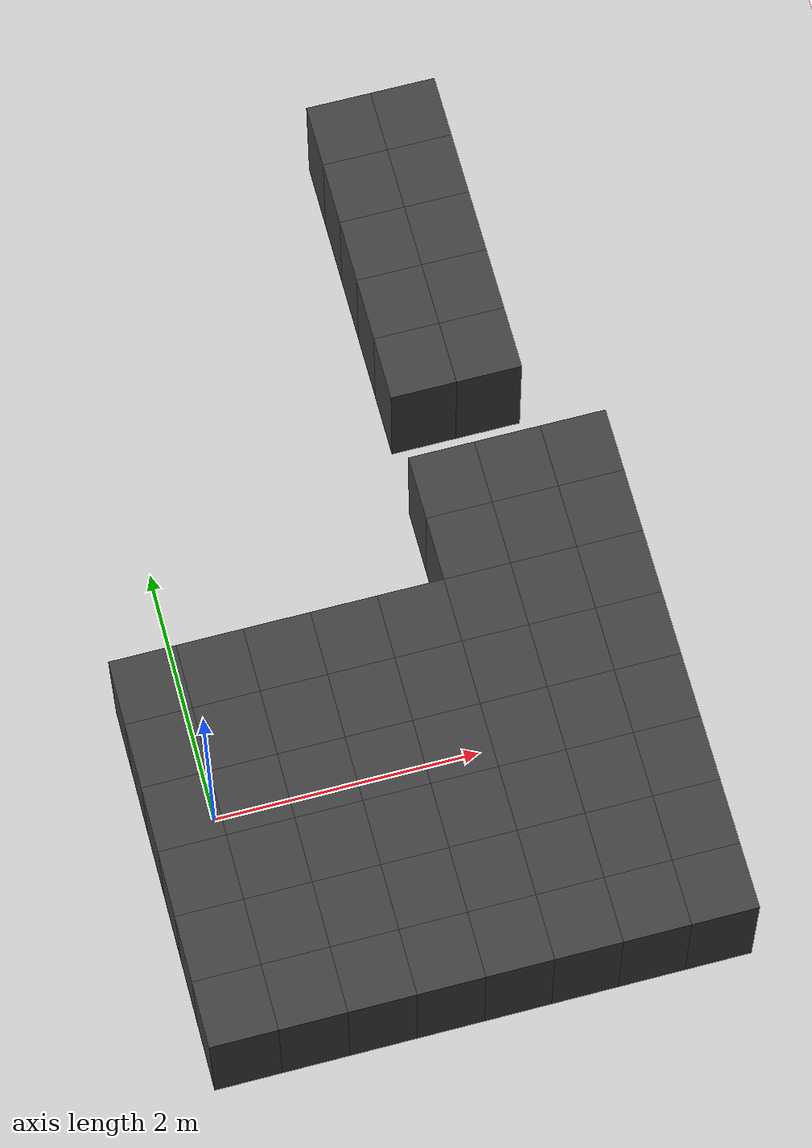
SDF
<sdf version="1.7">
 <world name="map_11515">
  <model name="ground_plane">
   <static>true</static>
   <link name="link">
    <collision name="collision">
     <geometry><plane><normal>0 0 1</normal><size>200 200</size></plane></geometry>
    </collision>
    <visual name="visual">
     <geometry><plane><normal>0 0 1</normal><size>200 200</size></plane></geometry>
     <material><ambient>0.8 0.8 0.8 1</ambient><diffuse>0.8 0.8 0.8 1</diffuse></material>
    </visual>
   </link>
  </model>
  <model name="maze_environment">
   <static>true</static>
   <link name="wall_662">
    <pose>2.250 4.750 0.500 0 0 0</pose>
    <collision name="col"><geometry><box><size>0.5 0.5 1.0</size></box></geometry></collision>
    <visual name="vis">
     <geometry><box><size>0.5 0.5 1.0</size></box></geometry>
     <material><ambient>0.15 0.15 0.15 1</ambient><diffuse>0.25 0.25 0.25 1</diffuse></material>
    </visual>
   </link>
   <link name="wall_663">
    <pose>2.750 4.750 0.500 0 0 0</pose>
    <collision name="col"><geometry><box><size>0.5 0.5 1.0</size></box></geometry></collision>
    <visual name="vis">
     <geometry><box><size>0.5 0.5 1.0</size></box></geometry>
     <material><ambient>0.15 0.15 0.15 1</ambient><diffuse>0.25 0.25 0.25 1</diffuse></material>
    </visual>
   </link>
   <link name="wall_702">
    <pose>2.250 4.250 0.500 0 0 0</pose>
    <collision name="col"><geometry><box><size>0.5 0.5 1.0</size></box></geometry></collision>
    <visual name="vis">
     <geometry><box><size>0.5 0.5 1.0</size></box></geometry>
     <material><ambient>0.15 0.15 0.15 1</ambient><diffuse>0.25 0.25 0.25 1</diffuse></material>
    </visual>
   </link>
   <link name="wall_703">
    <pose>2.750 4.250 0.500 0 0 0</pose>
    <collision name="col"><geometry><box><size>0.5 0.5 1.0</size></box></geometry></collision>
    <visual name="vis">
     <geometry><box><size>0.5 0.5 1.0</size></box></geometry>
     <material><ambient>0.15 0.15 0.15 1</ambient><diffuse>0.25 0.25 0.25 1</diffuse></material>
    </visual>
   </link>
   <link name="wall_744">
    <pose>2.250 3.750 0.500 0 0 0</pose>
    <collision name="col"><geometry><box><size>0.5 0.5 1.0</size></box></geometry></collision>
    <visual name="vis">
     <geometry><box><size>0.5 0.5 1.0</size></box></geometry>
     <material><ambient>0.15 0.15 0.15 1</ambient><diffuse>0.25 0.25 0.25 1</diffuse></material>
    </visual>
   </link>
   <link name="wall_745">
    <pose>2.750 3.750 0.500 0 0 0</pose>
    <collision name="col"><geometry><box><size>0.5 0.5 1.0</size></box></geometry></collision>
    <visual name="vis">
     <geometry><box><size>0.5 0.5 1.0</size></box></geometry>
     <material><ambient>0.15 0.15 0.15 1</ambient><diffuse>0.25 0.25 0.25 1</diffuse></material>
    </visual>
   </link>
   <link name="wall_786">
    <pose>2.250 3.250 0.500 0 0 0</pose>
    <collision name="col"><geometry><box><size>0.5 0.5 1.0</size></box></geometry></collision>
    <visual name="vis">
     <geometry><box><size>0.5 0.5 1.0</size></box></geometry>
     <material><ambient>0.15 0.15 0.15 1</ambient><diffuse>0.25 0.25 0.25 1</diffuse></material>
    </visual>
   </link>
   <link name="wall_787">
    <pose>2.750 3.250 0.500 0 0 0</pose>
    <collision name="col"><geometry><box><size>0.5 0.5 1.0</size></box></geometry></collision>
    <visual name="vis">
     <geometry><box><size>0.5 0.5 1.0</size></box></geometry>
     <material><ambient>0.15 0.15 0.15 1</ambient><diffuse>0.25 0.25 0.25 1</diffuse></material>
    </visual>
   </link>
   <link name="wall_822">
    <pose>2.250 2.750 0.500 0 0 0</pose>
    <collision name="col"><geometry><box><size>0.5 0.5 1.0</size></box></geometry></collision>
    <visual name="vis">
     <geometry><box><size>0.5 0.5 1.0</size></box></geometry>
     <material><ambient>0.15 0.15 0.15 1</ambient><diffuse>0.25 0.25 0.25 1</diffuse></material>
    </visual>
   </link>
   <link name="wall_823">
    <pose>2.750 2.750 0.500 0 0 0</pose>
    <collision name="col"><geometry><box><size>0.5 0.5 1.0</size></box></geometry></collision>
    <visual name="vis">
     <geometry><box><size>0.5 0.5 1.0</size></box></geometry>
     <material><ambient>0.15 0.15 0.15 1</ambient><diffuse>0.25 0.25 0.25 1</diffuse></material>
    </visual>
   </link>
   <link name="wall_884">
    <pose>2.250 1.750 0.500 0 0 0</pose>
    <collision name="col"><geometry><box><size>0.5 0.5 1.0</size></box></geometry></collision>
    <visual name="vis">
     <geometry><box><size>0.5 0.5 1.0</size></box></geometry>
     <material><ambient>0.15 0.15 0.15 1</ambient><diffuse>0.25 0.25 0.25 1</diffuse></material>
    </visual>
   </link>
   <link name="wall_885">
    <pose>2.750 1.750 0.500 0 0 0</pose>
    <collision name="col"><geometry><box><size>0.5 0.5 1.0</size></box></geometry></collision>
    <visual name="vis">
     <geometry><box><size>0.5 0.5 1.0</size></box></geometry>
     <material><ambient>0.15 0.15 0.15 1</ambient><diffuse>0.25 0.25 0.25 1</diffuse></material>
    </visual>
   </link>
   <link name="wall_886">
    <pose>3.250 1.750 0.500 0 0 0</pose>
    <collision name="col"><geometry><box><size>0.5 0.5 1.0</size></box></geometry></collision>
    <visual name="vis">
     <geometry><box><size>0.5 0.5 1.0</size></box></geometry>
     <material><ambient>0.15 0.15 0.15 1</ambient><diffuse>0.25 0.25 0.25 1</diffuse></material>
    </visual>
   </link>
   <link name="wall_920">
    <pose>2.250 1.250 0.500 0 0 0</pose>
    <collision name="col"><geometry><box><size>0.5 0.5 1.0</size></box></geometry></collision>
    <visual name="vis">
     <geometry><box><size>0.5 0.5 1.0</size></box></geometry>
     <material><ambient>0.15 0.15 0.15 1</ambient><diffuse>0.25 0.25 0.25 1</diffuse></material>
    </visual>
   </link>
   <link name="wall_921">
    <pose>2.750 1.250 0.500 0 0 0</pose>
    <collision name="col"><geometry><box><size>0.5 0.5 1.0</size></box></geometry></collision>
    <visual name="vis">
     <geometry><box><size>0.5 0.5 1.0</size></box></geometry>
     <material><ambient>0.15 0.15 0.15 1</ambient><diffuse>0.25 0.25 0.25 1</diffuse></material>
    </visual>
   </link>
   <link name="wall_922">
    <pose>3.250 1.250 0.500 0 0 0</pose>
    <collision name="col"><geometry><box><size>0.5 0.5 1.0</size></box></geometry></collision>
    <visual name="vis">
     <geometry><box><size>0.5 0.5 1.0</size></box></geometry>
     <material><ambient>0.15 0.15 0.15 1</ambient><diffuse>0.25 0.25 0.25 1</diffuse></material>
    </visual>
   </link>
   <link name="wall_956">
    <pose>-0.250 0.750 0.500 0 0 0</pose>
    <collision name="col"><geometry><box><size>0.5 0.5 1.0</size></box></geometry></collision>
    <visual name="vis">
     <geometry><box><size>0.5 0.5 1.0</size></box></geometry>
     <material><ambient>0.15 0.15 0.15 1</ambient><diffuse>0.25 0.25 0.25 1</diffuse></material>
    </visual>
   </link>
   <link name="wall_957">
    <pose>0.250 0.750 0.500 0 0 0</pose>
    <collision name="col"><geometry><box><size>0.5 0.5 1.0</size></box></geometry></collision>
    <visual name="vis">
     <geometry><box><size>0.5 0.5 1.0</size></box></geometry>
     <material><ambient>0.15 0.15 0.15 1</ambient><diffuse>0.25 0.25 0.25 1</diffuse></material>
    </visual>
   </link>
   <link name="wall_958">
    <pose>0.750 0.750 0.500 0 0 0</pose>
    <collision name="col"><geometry><box><size>0.5 0.5 1.0</size></box></geometry></collision>
    <visual name="vis">
     <geometry><box><size>0.5 0.5 1.0</size></box></geometry>
     <material><ambient>0.15 0.15 0.15 1</ambient><diffuse>0.25 0.25 0.25 1</diffuse></material>
    </visual>
   </link>
   <link name="wall_959">
    <pose>1.250 0.750 0.500 0 0 0</pose>
    <collision name="col"><geometry><box><size>0.5 0.5 1.0</size></box></geometry></collision>
    <visual name="vis">
     <geometry><box><size>0.5 0.5 1.0</size></box></geometry>
     <material><ambient>0.15 0.15 0.15 1</ambient><diffuse>0.25 0.25 0.25 1</diffuse></material>
    </visual>
   </link>
   <link name="wall_960">
    <pose>1.750 0.750 0.500 0 0 0</pose>
    <collision name="col"><geometry><box><size>0.5 0.5 1.0</size></box></geometry></collision>
    <visual name="vis">
     <geometry><box><size>0.5 0.5 1.0</size></box></geometry>
     <material><ambient>0.15 0.15 0.15 1</ambient><diffuse>0.25 0.25 0.25 1</diffuse></material>
    </visual>
   </link>
   <link name="wall_961">
    <pose>2.250 0.750 0.500 0 0 0</pose>
    <collision name="col"><geometry><box><size>0.5 0.5 1.0</size></box></geometry></collision>
    <visual name="vis">
     <geometry><box><size>0.5 0.5 1.0</size></box></geometry>
     <material><ambient>0.15 0.15 0.15 1</ambient><diffuse>0.25 0.25 0.25 1</diffuse></material>
    </visual>
   </link>
   <link name="wall_962">
    <pose>2.750 0.750 0.500 0 0 0</pose>
    <collision name="col"><geometry><box><size>0.5 0.5 1.0</size></box></geometry></collision>
    <visual name="vis">
     <geometry><box><size>0.5 0.5 1.0</size></box></geometry>
     <material><ambient>0.15 0.15 0.15 1</ambient><diffuse>0.25 0.25 0.25 1</diffuse></material>
    </visual>
   </link>
   <link name="wall_963">
    <pose>3.250 0.750 0.500 0 0 0</pose>
    <collision name="col"><geometry><box><size>0.5 0.5 1.0</size></box></geometry></collision>
    <visual name="vis">
     <geometry><box><size>0.5 0.5 1.0</size></box></geometry>
     <material><ambient>0.15 0.15 0.15 1</ambient><diffuse>0.25 0.25 0.25 1</diffuse></material>
    </visual>
   </link>
   <link name="wall_1005">
    <pose>-0.250 0.250 0.500 0 0 0</pose>
    <collision name="col"><geometry><box><size>0.5 0.5 1.0</size></box></geometry></collision>
    <visual name="vis">
     <geometry><box><size>0.5 0.5 1.0</size></box></geometry>
     <material><ambient>0.15 0.15 0.15 1</ambient><diffuse>0.25 0.25 0.25 1</diffuse></material>
    </visual>
   </link>
   <link name="wall_1006">
    <pose>0.250 0.250 0.500 0 0 0</pose>
    <collision name="col"><geometry><box><size>0.5 0.5 1.0</size></box></geometry></collision>
    <visual name="vis">
     <geometry><box><size>0.5 0.5 1.0</size></box></geometry>
     <material><ambient>0.15 0.15 0.15 1</ambient><diffuse>0.25 0.25 0.25 1</diffuse></material>
    </visual>
   </link>
   <link name="wall_1007">
    <pose>0.750 0.250 0.500 0 0 0</pose>
    <collision name="col"><geometry><box><size>0.5 0.5 1.0</size></box></geometry></collision>
    <visual name="vis">
     <geometry><box><size>0.5 0.5 1.0</size></box></geometry>
     <material><ambient>0.15 0.15 0.15 1</ambient><diffuse>0.25 0.25 0.25 1</diffuse></material>
    </visual>
   </link>
   <link name="wall_1008">
    <pose>1.250 0.250 0.500 0 0 0</pose>
    <collision name="col"><geometry><box><size>0.5 0.5 1.0</size></box></geometry></collision>
    <visual name="vis">
     <geometry><box><size>0.5 0.5 1.0</size></box></geometry>
     <material><ambient>0.15 0.15 0.15 1</ambient><diffuse>0.25 0.25 0.25 1</diffuse></material>
    </visual>
   </link>
   <link name="wall_1009">
    <pose>1.750 0.250 0.500 0 0 0</pose>
    <collision name="col"><geometry><box><size>0.5 0.5 1.0</size></box></geometry></collision>
    <visual name="vis">
     <geometry><box><size>0.5 0.5 1.0</size></box></geometry>
     <material><ambient>0.15 0.15 0.15 1</ambient><diffuse>0.25 0.25 0.25 1</diffuse></material>
    </visual>
   </link>
   <link name="wall_1010">
    <pose>2.250 0.250 0.500 0 0 0</pose>
    <collision name="col"><geometry><box><size>0.5 0.5 1.0</size></box></geometry></collision>
    <visual name="vis">
     <geometry><box><size>0.5 0.5 1.0</size></box></geometry>
     <material><ambient>0.15 0.15 0.15 1</ambient><diffuse>0.25 0.25 0.25 1</diffuse></material>
    </visual>
   </link>
   <link name="wall_1011">
    <pose>2.750 0.250 0.500 0 0 0</pose>
    <collision name="col"><geometry><box><size>0.5 0.5 1.0</size></box></geometry></collision>
    <visual name="vis">
     <geometry><box><size>0.5 0.5 1.0</size></box></geometry>
     <material><ambient>0.15 0.15 0.15 1</ambient><diffuse>0.25 0.25 0.25 1</diffuse></material>
    </visual>
   </link>
   <link name="wall_1012">
    <pose>3.250 0.250 0.500 0 0 0</pose>
    <collision name="col"><geometry><box><size>0.5 0.5 1.0</size></box></geometry></collision>
    <visual name="vis">
     <geometry><box><size>0.5 0.5 1.0</size></box></geometry>
     <material><ambient>0.15 0.15 0.15 1</ambient><diffuse>0.25 0.25 0.25 1</diffuse></material>
    </visual>
   </link>
   <link name="wall_1054">
    <pose>-0.250 -0.250 0.500 0 0 0</pose>
    <collision name="col"><geometry><box><size>0.5 0.5 1.0</size></box></geometry></collision>
    <visual name="vis">
     <geometry><box><size>0.5 0.5 1.0</size></box></geometry>
     <material><ambient>0.15 0.15 0.15 1</ambient><diffuse>0.25 0.25 0.25 1</diffuse></material>
    </visual>
   </link>
   <link name="wall_1055">
    <pose>0.250 -0.250 0.500 0 0 0</pose>
    <collision name="col"><geometry><box><size>0.5 0.5 1.0</size></box></geometry></collision>
    <visual name="vis">
     <geometry><box><size>0.5 0.5 1.0</size></box></geometry>
     <material><ambient>0.15 0.15 0.15 1</ambient><diffuse>0.25 0.25 0.25 1</diffuse></material>
    </visual>
   </link>
   <link name="wall_1056">
    <pose>0.750 -0.250 0.500 0 0 0</pose>
    <collision name="col"><geometry><box><size>0.5 0.5 1.0</size></box></geometry></collision>
    <visual name="vis">
     <geometry><box><size>0.5 0.5 1.0</size></box></geometry>
     <material><ambient>0.15 0.15 0.15 1</ambient><diffuse>0.25 0.25 0.25 1</diffuse></material>
    </visual>
   </link>
   <link name="wall_1057">
    <pose>1.250 -0.250 0.500 0 0 0</pose>
    <collision name="col"><geometry><box><size>0.5 0.5 1.0</size></box></geometry></collision>
    <visual name="vis">
     <geometry><box><size>0.5 0.5 1.0</size></box></geometry>
     <material><ambient>0.15 0.15 0.15 1</ambient><diffuse>0.25 0.25 0.25 1</diffuse></material>
    </visual>
   </link>
   <link name="wall_1058">
    <pose>1.750 -0.250 0.500 0 0 0</pose>
    <collision name="col"><geometry><box><size>0.5 0.5 1.0</size></box></geometry></collision>
    <visual name="vis">
     <geometry><box><size>0.5 0.5 1.0</size></box></geometry>
     <material><ambient>0.15 0.15 0.15 1</ambient><diffuse>0.25 0.25 0.25 1</diffuse></material>
    </visual>
   </link>
   <link name="wall_1059">
    <pose>2.250 -0.250 0.500 0 0 0</pose>
    <collision name="col"><geometry><box><size>0.5 0.5 1.0</size></box></geometry></collision>
    <visual name="vis">
     <geometry><box><size>0.5 0.5 1.0</size></box></geometry>
     <material><ambient>0.15 0.15 0.15 1</ambient><diffuse>0.25 0.25 0.25 1</diffuse></material>
    </visual>
   </link>
   <link name="wall_1060">
    <pose>2.750 -0.250 0.500 0 0 0</pose>
    <collision name="col"><geometry><box><size>0.5 0.5 1.0</size></box></geometry></collision>
    <visual name="vis">
     <geometry><box><size>0.5 0.5 1.0</size></box></geometry>
     <material><ambient>0.15 0.15 0.15 1</ambient><diffuse>0.25 0.25 0.25 1</diffuse></material>
    </visual>
   </link>
   <link name="wall_1061">
    <pose>3.250 -0.250 0.500 0 0 0</pose>
    <collision name="col"><geometry><box><size>0.5 0.5 1.0</size></box></geometry></collision>
    <visual name="vis">
     <geometry><box><size>0.5 0.5 1.0</size></box></geometry>
     <material><ambient>0.15 0.15 0.15 1</ambient><diffuse>0.25 0.25 0.25 1</diffuse></material>
    </visual>
   </link>
   <link name="wall_1103">
    <pose>-0.250 -0.750 0.500 0 0 0</pose>
    <collision name="col"><geometry><box><size>0.5 0.5 1.0</size></box></geometry></collision>
    <visual name="vis">
     <geometry><box><size>0.5 0.5 1.0</size></box></geometry>
     <material><ambient>0.15 0.15 0.15 1</ambient><diffuse>0.25 0.25 0.25 1</diffuse></material>
    </visual>
   </link>
   <link name="wall_1104">
    <pose>0.250 -0.750 0.500 0 0 0</pose>
    <collision name="col"><geometry><box><size>0.5 0.5 1.0</size></box></geometry></collision>
    <visual name="vis">
     <geometry><box><size>0.5 0.5 1.0</size></box></geometry>
     <material><ambient>0.15 0.15 0.15 1</ambient><diffuse>0.25 0.25 0.25 1</diffuse></material>
    </visual>
   </link>
   <link name="wall_1105">
    <pose>0.750 -0.750 0.500 0 0 0</pose>
    <collision name="col"><geometry><box><size>0.5 0.5 1.0</size></box></geometry></collision>
    <visual name="vis">
     <geometry><box><size>0.5 0.5 1.0</size></box></geometry>
     <material><ambient>0.15 0.15 0.15 1</ambient><diffuse>0.25 0.25 0.25 1</diffuse></material>
    </visual>
   </link>
   <link name="wall_1106">
    <pose>1.250 -0.750 0.500 0 0 0</pose>
    <collision name="col"><geometry><box><size>0.5 0.5 1.0</size></box></geometry></collision>
    <visual name="vis">
     <geometry><box><size>0.5 0.5 1.0</size></box></geometry>
     <material><ambient>0.15 0.15 0.15 1</ambient><diffuse>0.25 0.25 0.25 1</diffuse></material>
    </visual>
   </link>
   <link name="wall_1107">
    <pose>1.750 -0.750 0.500 0 0 0</pose>
    <collision name="col"><geometry><box><size>0.5 0.5 1.0</size></box></geometry></collision>
    <visual name="vis">
     <geometry><box><size>0.5 0.5 1.0</size></box></geometry>
     <material><ambient>0.15 0.15 0.15 1</ambient><diffuse>0.25 0.25 0.25 1</diffuse></material>
    </visual>
   </link>
   <link name="wall_1108">
    <pose>2.250 -0.750 0.500 0 0 0</pose>
    <collision name="col"><geometry><box><size>0.5 0.5 1.0</size></box></geometry></collision>
    <visual name="vis">
     <geometry><box><size>0.5 0.5 1.0</size></box></geometry>
     <material><ambient>0.15 0.15 0.15 1</ambient><diffuse>0.25 0.25 0.25 1</diffuse></material>
    </visual>
   </link>
   <link name="wall_1109">
    <pose>2.750 -0.750 0.500 0 0 0</pose>
    <collision name="col"><geometry><box><size>0.5 0.5 1.0</size></box></geometry></collision>
    <visual name="vis">
     <geometry><box><size>0.5 0.5 1.0</size></box></geometry>
     <material><ambient>0.15 0.15 0.15 1</ambient><diffuse>0.25 0.25 0.25 1</diffuse></material>
    </visual>
   </link>
   <link name="wall_1110">
    <pose>3.250 -0.750 0.500 0 0 0</pose>
    <collision name="col"><geometry><box><size>0.5 0.5 1.0</size></box></geometry></collision>
    <visual name="vis">
     <geometry><box><size>0.5 0.5 1.0</size></box></geometry>
     <material><ambient>0.15 0.15 0.15 1</ambient><diffuse>0.25 0.25 0.25 1</diffuse></material>
    </visual>
   </link>
   <link name="wall_1152">
    <pose>-0.250 -1.250 0.500 0 0 0</pose>
    <collision name="col"><geometry><box><size>0.5 0.5 1.0</size></box></geometry></collision>
    <visual name="vis">
     <geometry><box><size>0.5 0.5 1.0</size></box></geometry>
     <material><ambient>0.15 0.15 0.15 1</ambient><diffuse>0.25 0.25 0.25 1</diffuse></material>
    </visual>
   </link>
   <link name="wall_1153">
    <pose>0.250 -1.250 0.500 0 0 0</pose>
    <collision name="col"><geometry><box><size>0.5 0.5 1.0</size></box></geometry></collision>
    <visual name="vis">
     <geometry><box><size>0.5 0.5 1.0</size></box></geometry>
     <material><ambient>0.15 0.15 0.15 1</ambient><diffuse>0.25 0.25 0.25 1</diffuse></material>
    </visual>
   </link>
   <link name="wall_1154">
    <pose>0.750 -1.250 0.500 0 0 0</pose>
    <collision name="col"><geometry><box><size>0.5 0.5 1.0</size></box></geometry></collision>
    <visual name="vis">
     <geometry><box><size>0.5 0.5 1.0</size></box></geometry>
     <material><ambient>0.15 0.15 0.15 1</ambient><diffuse>0.25 0.25 0.25 1</diffuse></material>
    </visual>
   </link>
   <link name="wall_1155">
    <pose>1.250 -1.250 0.500 0 0 0</pose>
    <collision name="col"><geometry><box><size>0.5 0.5 1.0</size></box></geometry></collision>
    <visual name="vis">
     <geometry><box><size>0.5 0.5 1.0</size></box></geometry>
     <material><ambient>0.15 0.15 0.15 1</ambient><diffuse>0.25 0.25 0.25 1</diffuse></material>
    </visual>
   </link>
   <link name="wall_1156">
    <pose>1.750 -1.250 0.500 0 0 0</pose>
    <collision name="col"><geometry><box><size>0.5 0.5 1.0</size></box></geometry></collision>
    <visual name="vis">
     <geometry><box><size>0.5 0.5 1.0</size></box></geometry>
     <material><ambient>0.15 0.15 0.15 1</ambient><diffuse>0.25 0.25 0.25 1</diffuse></material>
    </visual>
   </link>
   <link name="wall_1157">
    <pose>2.250 -1.250 0.500 0 0 0</pose>
    <collision name="col"><geometry><box><size>0.5 0.5 1.0</size></box></geometry></collision>
    <visual name="vis">
     <geometry><box><size>0.5 0.5 1.0</size></box></geometry>
     <material><ambient>0.15 0.15 0.15 1</ambient><diffuse>0.25 0.25 0.25 1</diffuse></material>
    </visual>
   </link>
   <link name="wall_1158">
    <pose>2.750 -1.250 0.500 0 0 0</pose>
    <collision name="col"><geometry><box><size>0.5 0.5 1.0</size></box></geometry></collision>
    <visual name="vis">
     <geometry><box><size>0.5 0.5 1.0</size></box></geometry>
     <material><ambient>0.15 0.15 0.15 1</ambient><diffuse>0.25 0.25 0.25 1</diffuse></material>
    </visual>
   </link>
   <link name="wall_1159">
    <pose>3.250 -1.250 0.500 0 0 0</pose>
    <collision name="col"><geometry><box><size>0.5 0.5 1.0</size></box></geometry></collision>
    <visual name="vis">
     <geometry><box><size>0.5 0.5 1.0</size></box></geometry>
     <material><ambient>0.15 0.15 0.15 1</ambient><diffuse>0.25 0.25 0.25 1</diffuse></material>
    </visual>
   </link>
   <link name="wall_1201">
    <pose>-0.250 -1.750 0.500 0 0 0</pose>
    <collision name="col"><geometry><box><size>0.5 0.5 1.0</size></box></geometry></collision>
    <visual name="vis">
     <geometry><box><size>0.5 0.5 1.0</size></box></geometry>
     <material><ambient>0.15 0.15 0.15 1</ambient><diffuse>0.25 0.25 0.25 1</diffuse></material>
    </visual>
   </link>
   <link name="wall_1202">
    <pose>0.250 -1.750 0.500 0 0 0</pose>
    <collision name="col"><geometry><box><size>0.5 0.5 1.0</size></box></geometry></collision>
    <visual name="vis">
     <geometry><box><size>0.5 0.5 1.0</size></box></geometry>
     <material><ambient>0.15 0.15 0.15 1</ambient><diffuse>0.25 0.25 0.25 1</diffuse></material>
    </visual>
   </link>
   <link name="wall_1203">
    <pose>0.750 -1.750 0.500 0 0 0</pose>
    <collision name="col"><geometry><box><size>0.5 0.5 1.0</size></box></geometry></collision>
    <visual name="vis">
     <geometry><box><size>0.5 0.5 1.0</size></box></geometry>
     <material><ambient>0.15 0.15 0.15 1</ambient><diffuse>0.25 0.25 0.25 1</diffuse></material>
    </visual>
   </link>
   <link name="wall_1204">
    <pose>1.250 -1.750 0.500 0 0 0</pose>
    <collision name="col"><geometry><box><size>0.5 0.5 1.0</size></box></geometry></collision>
    <visual name="vis">
     <geometry><box><size>0.5 0.5 1.0</size></box></geometry>
     <material><ambient>0.15 0.15 0.15 1</ambient><diffuse>0.25 0.25 0.25 1</diffuse></material>
    </visual>
   </link>
   <link name="wall_1205">
    <pose>1.750 -1.750 0.500 0 0 0</pose>
    <collision name="col"><geometry><box><size>0.5 0.5 1.0</size></box></geometry></collision>
    <visual name="vis">
     <geometry><box><size>0.5 0.5 1.0</size></box></geometry>
     <material><ambient>0.15 0.15 0.15 1</ambient><diffuse>0.25 0.25 0.25 1</diffuse></material>
    </visual>
   </link>
   <link name="wall_1206">
    <pose>2.250 -1.750 0.500 0 0 0</pose>
    <collision name="col"><geometry><box><size>0.5 0.5 1.0</size></box></geometry></collision>
    <visual name="vis">
     <geometry><box><size>0.5 0.5 1.0</size></box></geometry>
     <material><ambient>0.15 0.15 0.15 1</ambient><diffuse>0.25 0.25 0.25 1</diffuse></material>
    </visual>
   </link>
   <link name="wall_1207">
    <pose>2.750 -1.750 0.500 0 0 0</pose>
    <collision name="col"><geometry><box><size>0.5 0.5 1.0</size></box></geometry></collision>
    <visual name="vis">
     <geometry><box><size>0.5 0.5 1.0</size></box></geometry>
     <material><ambient>0.15 0.15 0.15 1</ambient><diffuse>0.25 0.25 0.25 1</diffuse></material>
    </visual>
   </link>
   <link name="wall_1208">
    <pose>3.250 -1.750 0.500 0 0 0</pose>
    <collision name="col"><geometry><box><size>0.5 0.5 1.0</size></box></geometry></collision>
    <visual name="vis">
     <geometry><box><size>0.5 0.5 1.0</size></box></geometry>
     <material><ambient>0.15 0.15 0.15 1</ambient><diffuse>0.25 0.25 0.25 1</diffuse></material>
    </visual>
   </link>
  </model>
 </world>
</sdf>
